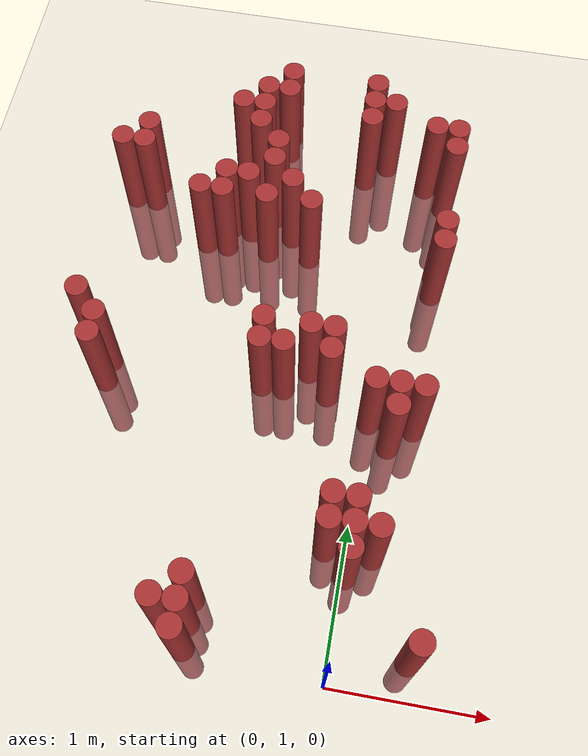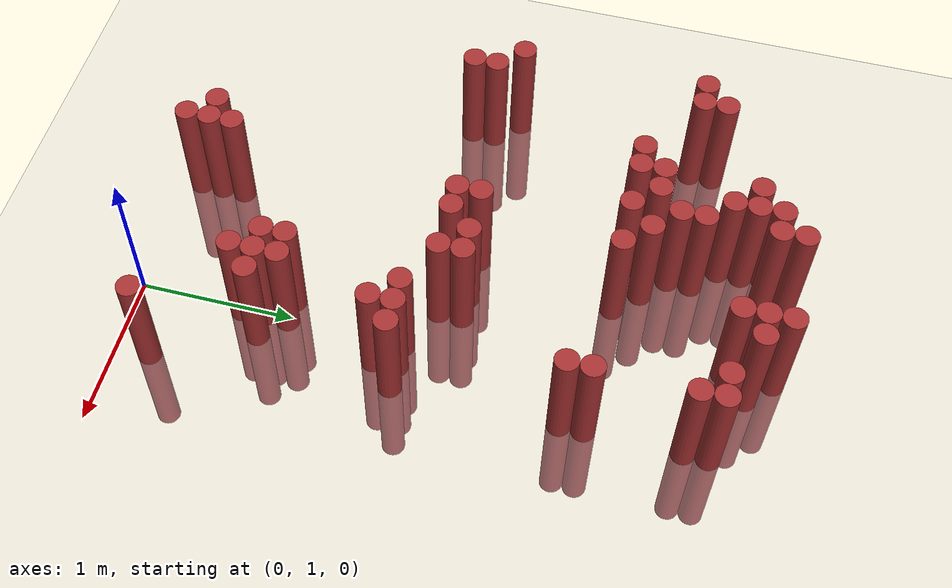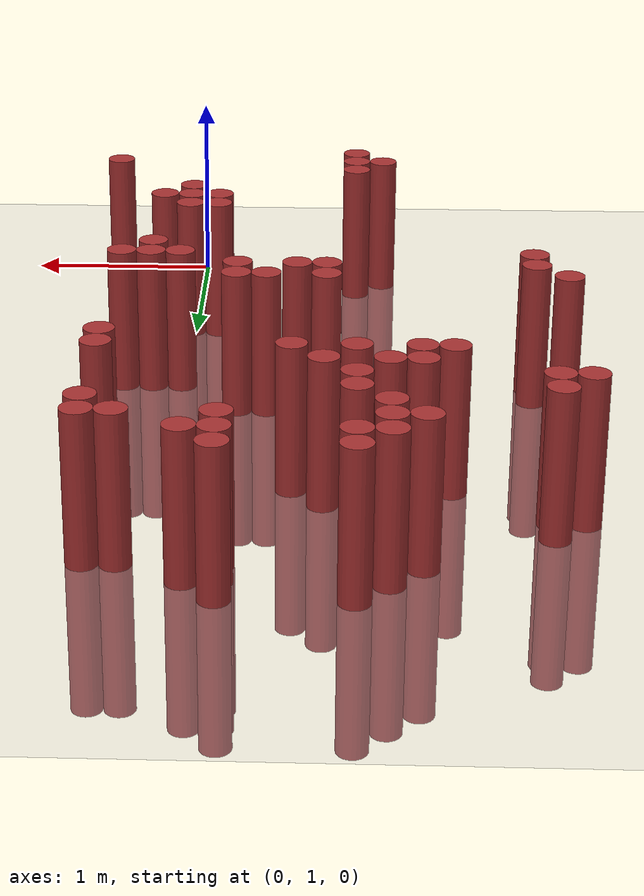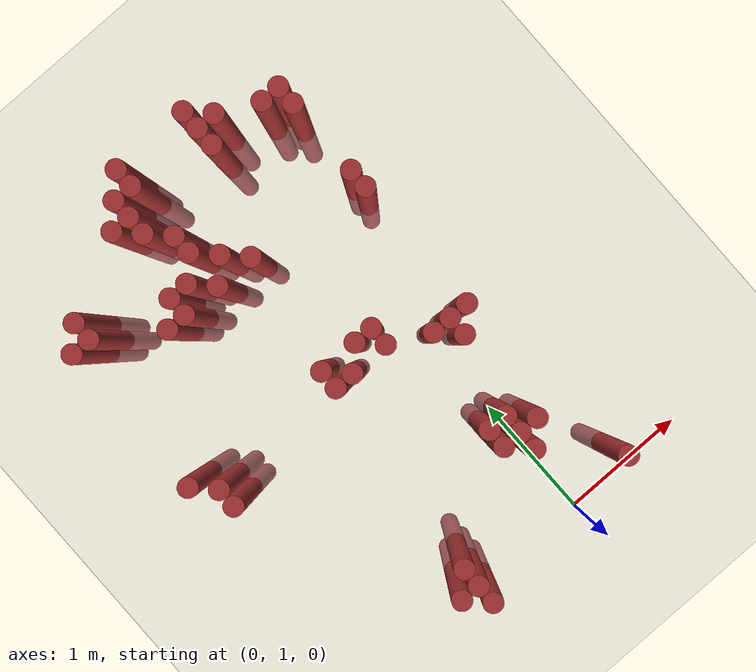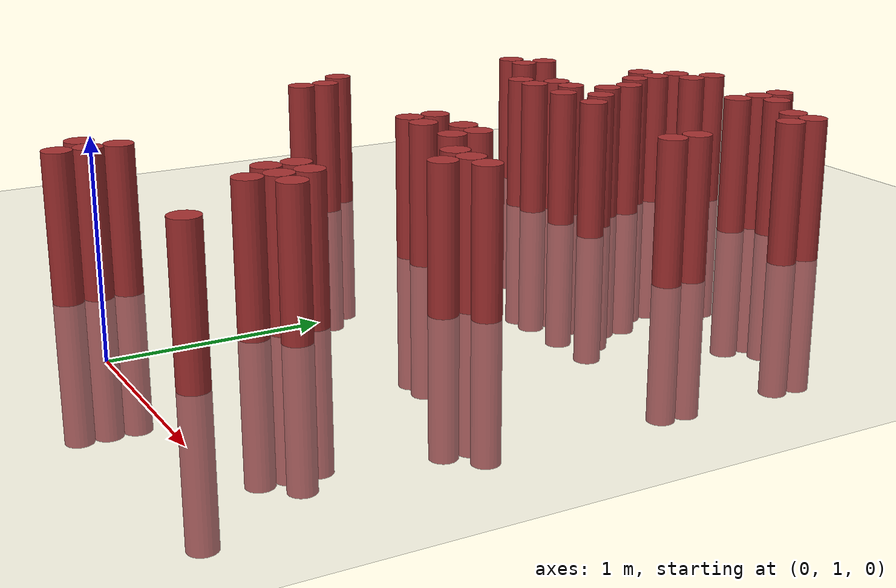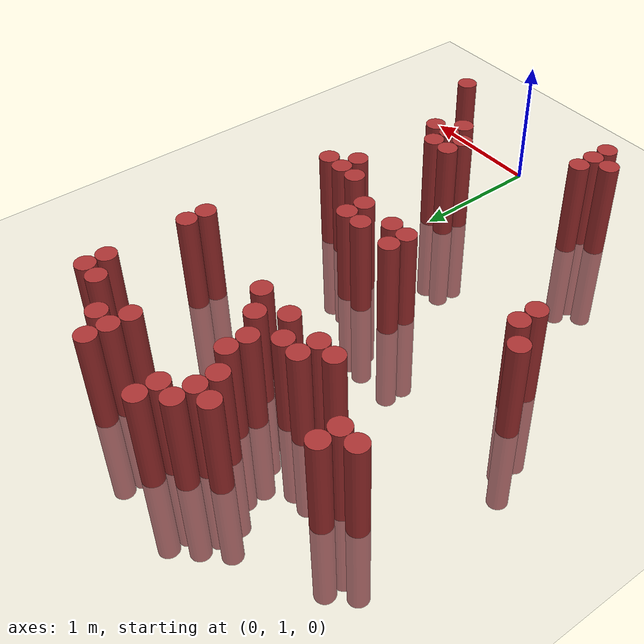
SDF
<sdf version="1.6">
 <world name="default">
  <model name="ground_plane">
   <static>1</static>
   <link name="link">
    <collision name="collision">
     <geometry><plane><normal>0 0 1</normal><size>100 100</size></plane></geometry>
     <surface><friction><ode><mu>100</mu><mu2>50</mu2></ode></friction></surface>
    </collision>
    <visual name="visual">
     <cast_shadows>0</cast_shadows>
     <geometry><plane><normal>0 0 1</normal><size>100 100</size></plane></geometry>
     <material>
      <script><uri>file://media/materials/scripts/gazebo.material</uri><name>Gazebo/Grey</name></script>
     </material>
    </visual>
   </link>
  </model>
  <model name="unit_cylinder_318">
   <static>1</static>
   <pose>-1.925000 3.025000 0.000000 0.000000 0.000000 0.000000</pose>
   <link name="link">
    <inertial>
     <mass>1</mass>
     <inertia><ixx>0.145833</ixx><ixy>0</ixy><ixz>0</ixz><iyy>0.145833</iyy><iyz>0</iyz><izz>0.125</izz></inertia>
    </inertial>
    <collision name="collision">
     <geometry><cylinder><radius>0.075000</radius><length>1.5</length></cylinder></geometry>
    </collision>
    <visual name="visual">
     <geometry><cylinder><radius>0.075000</radius><length>1.5</length></cylinder></geometry>
     <material>
      <ambient>0.648000 0.192000 0.192000 1</ambient>
      <diffuse>0.648000 0.192000 0.192000 1</diffuse>
     </material>
     <material>
      <script><name>Gazebo/Grey</name><uri>file://media/materials/scripts/gazebo.material</uri></script>
     </material>
    </visual>
   </link>
  </model>
  <model name="unit_cylinder_319">
   <static>1</static>
   <pose>-1.925000 4.225000 0.000000 0.000000 0.000000 0.000000</pose>
   <link name="link">
    <inertial>
     <mass>1</mass>
     <inertia><ixx>0.145833</ixx><ixy>0</ixy><ixz>0</ixz><iyy>0.145833</iyy><iyz>0</iyz><izz>0.125</izz></inertia>
    </inertial>
    <collision name="collision">
     <geometry><cylinder><radius>0.075000</radius><length>1.5</length></cylinder></geometry>
    </collision>
    <visual name="visual">
     <geometry><cylinder><radius>0.075000</radius><length>1.5</length></cylinder></geometry>
     <material>
      <ambient>0.648000 0.192000 0.192000 1</ambient>
      <diffuse>0.648000 0.192000 0.192000 1</diffuse>
     </material>
     <material>
      <script><name>Gazebo/Grey</name><uri>file://media/materials/scripts/gazebo.material</uri></script>
     </material>
    </visual>
   </link>
  </model>
  <model name="unit_cylinder_322">
   <static>1</static>
   <pose>-1.775000 2.725000 0.000000 0.000000 0.000000 0.000000</pose>
   <link name="link">
    <inertial>
     <mass>1</mass>
     <inertia><ixx>0.145833</ixx><ixy>0</ixy><ixz>0</ixz><iyy>0.145833</iyy><iyz>0</iyz><izz>0.125</izz></inertia>
    </inertial>
    <collision name="collision">
     <geometry><cylinder><radius>0.075000</radius><length>1.5</length></cylinder></geometry>
    </collision>
    <visual name="visual">
     <geometry><cylinder><radius>0.075000</radius><length>1.5</length></cylinder></geometry>
     <material>
      <ambient>0.648000 0.192000 0.192000 1</ambient>
      <diffuse>0.648000 0.192000 0.192000 1</diffuse>
     </material>
     <material>
      <script><name>Gazebo/Grey</name><uri>file://media/materials/scripts/gazebo.material</uri></script>
     </material>
    </visual>
   </link>
  </model>
  <model name="unit_cylinder_323">
   <static>1</static>
   <pose>-1.775000 2.875000 0.000000 0.000000 0.000000 0.000000</pose>
   <link name="link">
    <inertial>
     <mass>1</mass>
     <inertia><ixx>0.145833</ixx><ixy>0</ixy><ixz>0</ixz><iyy>0.145833</iyy><iyz>0</iyz><izz>0.125</izz></inertia>
    </inertial>
    <collision name="collision">
     <geometry><cylinder><radius>0.075000</radius><length>1.5</length></cylinder></geometry>
    </collision>
    <visual name="visual">
     <geometry><cylinder><radius>0.075000</radius><length>1.5</length></cylinder></geometry>
     <material>
      <ambient>0.648000 0.192000 0.192000 1</ambient>
      <diffuse>0.648000 0.192000 0.192000 1</diffuse>
     </material>
     <material>
      <script><name>Gazebo/Grey</name><uri>file://media/materials/scripts/gazebo.material</uri></script>
     </material>
    </visual>
   </link>
  </model>
  <model name="unit_cylinder_324">
   <static>1</static>
   <pose>-1.775000 4.225000 0.000000 0.000000 0.000000 0.000000</pose>
   <link name="link">
    <inertial>
     <mass>1</mass>
     <inertia><ixx>0.145833</ixx><ixy>0</ixy><ixz>0</ixz><iyy>0.145833</iyy><iyz>0</iyz><izz>0.125</izz></inertia>
    </inertial>
    <collision name="collision">
     <geometry><cylinder><radius>0.075000</radius><length>1.5</length></cylinder></geometry>
    </collision>
    <visual name="visual">
     <geometry><cylinder><radius>0.075000</radius><length>1.5</length></cylinder></geometry>
     <material>
      <ambient>0.648000 0.192000 0.192000 1</ambient>
      <diffuse>0.648000 0.192000 0.192000 1</diffuse>
     </material>
     <material>
      <script><name>Gazebo/Grey</name><uri>file://media/materials/scripts/gazebo.material</uri></script>
     </material>
    </visual>
   </link>
  </model>
  <model name="unit_cylinder_325">
   <static>1</static>
   <pose>-1.775000 4.375000 0.000000 0.000000 0.000000 0.000000</pose>
   <link name="link">
    <inertial>
     <mass>1</mass>
     <inertia><ixx>0.145833</ixx><ixy>0</ixy><ixz>0</ixz><iyy>0.145833</iyy><iyz>0</iyz><izz>0.125</izz></inertia>
    </inertial>
    <collision name="collision">
     <geometry><cylinder><radius>0.075000</radius><length>1.5</length></cylinder></geometry>
    </collision>
    <visual name="visual">
     <geometry><cylinder><radius>0.075000</radius><length>1.5</length></cylinder></geometry>
     <material>
      <ambient>0.648000 0.192000 0.192000 1</ambient>
      <diffuse>0.648000 0.192000 0.192000 1</diffuse>
     </material>
     <material>
      <script><name>Gazebo/Grey</name><uri>file://media/materials/scripts/gazebo.material</uri></script>
     </material>
    </visual>
   </link>
  </model>
  <model name="unit_cylinder_328">
   <static>1</static>
   <pose>-1.325000 3.925000 0.000000 0.000000 0.000000 0.000000</pose>
   <link name="link">
    <inertial>
     <mass>1</mass>
     <inertia><ixx>0.145833</ixx><ixy>0</ixy><ixz>0</ixz><iyy>0.145833</iyy><iyz>0</iyz><izz>0.125</izz></inertia>
    </inertial>
    <collision name="collision">
     <geometry><cylinder><radius>0.075000</radius><length>1.5</length></cylinder></geometry>
    </collision>
    <visual name="visual">
     <geometry><cylinder><radius>0.075000</radius><length>1.5</length></cylinder></geometry>
     <material>
      <ambient>0.648000 0.192000 0.192000 1</ambient>
      <diffuse>0.648000 0.192000 0.192000 1</diffuse>
     </material>
     <material>
      <script><name>Gazebo/Grey</name><uri>file://media/materials/scripts/gazebo.material</uri></script>
     </material>
    </visual>
   </link>
  </model>
  <model name="unit_cylinder_331">
   <static>1</static>
   <pose>-1.175000 3.925000 0.000000 0.000000 0.000000 0.000000</pose>
   <link name="link">
    <inertial>
     <mass>1</mass>
     <inertia><ixx>0.145833</ixx><ixy>0</ixy><ixz>0</ixz><iyy>0.145833</iyy><iyz>0</iyz><izz>0.125</izz></inertia>
    </inertial>
    <collision name="collision">
     <geometry><cylinder><radius>0.075000</radius><length>1.5</length></cylinder></geometry>
    </collision>
    <visual name="visual">
     <geometry><cylinder><radius>0.075000</radius><length>1.5</length></cylinder></geometry>
     <material>
      <ambient>0.648000 0.192000 0.192000 1</ambient>
      <diffuse>0.648000 0.192000 0.192000 1</diffuse>
     </material>
     <material>
      <script><name>Gazebo/Grey</name><uri>file://media/materials/scripts/gazebo.material</uri></script>
     </material>
    </visual>
   </link>
  </model>
  <model name="unit_cylinder_332">
   <static>1</static>
   <pose>-1.175000 4.075000 0.000000 0.000000 0.000000 0.000000</pose>
   <link name="link">
    <inertial>
     <mass>1</mass>
     <inertia><ixx>0.145833</ixx><ixy>0</ixy><ixz>0</ixz><iyy>0.145833</iyy><iyz>0</iyz><izz>0.125</izz></inertia>
    </inertial>
    <collision name="collision">
     <geometry><cylinder><radius>0.075000</radius><length>1.5</length></cylinder></geometry>
    </collision>
    <visual name="visual">
     <geometry><cylinder><radius>0.075000</radius><length>1.5</length></cylinder></geometry>
     <material>
      <ambient>0.648000 0.192000 0.192000 1</ambient>
      <diffuse>0.648000 0.192000 0.192000 1</diffuse>
     </material>
     <material>
      <script><name>Gazebo/Grey</name><uri>file://media/materials/scripts/gazebo.material</uri></script>
     </material>
    </visual>
   </link>
  </model>
  <model name="unit_cylinder_333">
   <static>1</static>
   <pose>-1.175000 4.675000 0.000000 0.000000 0.000000 0.000000</pose>
   <link name="link">
    <inertial>
     <mass>1</mass>
     <inertia><ixx>0.145833</ixx><ixy>0</ixy><ixz>0</ixz><iyy>0.145833</iyy><iyz>0</iyz><izz>0.125</izz></inertia>
    </inertial>
    <collision name="collision">
     <geometry><cylinder><radius>0.075000</radius><length>1.5</length></cylinder></geometry>
    </collision>
    <visual name="visual">
     <geometry><cylinder><radius>0.075000</radius><length>1.5</length></cylinder></geometry>
     <material>
      <ambient>0.648000 0.192000 0.192000 1</ambient>
      <diffuse>0.648000 0.192000 0.192000 1</diffuse>
     </material>
     <material>
      <script><name>Gazebo/Grey</name><uri>file://media/materials/scripts/gazebo.material</uri></script>
     </material>
    </visual>
   </link>
  </model>
  <model name="unit_cylinder_334">
   <static>1</static>
   <pose>-1.025000 1.225000 0.000000 0.000000 0.000000 0.000000</pose>
   <link name="link">
    <inertial>
     <mass>1</mass>
     <inertia><ixx>0.145833</ixx><ixy>0</ixy><ixz>0</ixz><iyy>0.145833</iyy><iyz>0</iyz><izz>0.125</izz></inertia>
    </inertial>
    <collision name="collision">
     <geometry><cylinder><radius>0.075000</radius><length>1.5</length></cylinder></geometry>
    </collision>
    <visual name="visual">
     <geometry><cylinder><radius>0.075000</radius><length>1.5</length></cylinder></geometry>
     <material>
      <ambient>0.648000 0.192000 0.192000 1</ambient>
      <diffuse>0.648000 0.192000 0.192000 1</diffuse>
     </material>
     <material>
      <script><name>Gazebo/Grey</name><uri>file://media/materials/scripts/gazebo.material</uri></script>
     </material>
    </visual>
   </link>
  </model>
  <model name="unit_cylinder_335">
   <static>1</static>
   <pose>-1.025000 4.075000 0.000000 0.000000 0.000000 0.000000</pose>
   <link name="link">
    <inertial>
     <mass>1</mass>
     <inertia><ixx>0.145833</ixx><ixy>0</ixy><ixz>0</ixz><iyy>0.145833</iyy><iyz>0</iyz><izz>0.125</izz></inertia>
    </inertial>
    <collision name="collision">
     <geometry><cylinder><radius>0.075000</radius><length>1.5</length></cylinder></geometry>
    </collision>
    <visual name="visual">
     <geometry><cylinder><radius>0.075000</radius><length>1.5</length></cylinder></geometry>
     <material>
      <ambient>0.648000 0.192000 0.192000 1</ambient>
      <diffuse>0.648000 0.192000 0.192000 1</diffuse>
     </material>
     <material>
      <script><name>Gazebo/Grey</name><uri>file://media/materials/scripts/gazebo.material</uri></script>
     </material>
    </visual>
   </link>
  </model>
  <model name="unit_cylinder_336">
   <static>1</static>
   <pose>-1.025000 4.525000 0.000000 0.000000 0.000000 0.000000</pose>
   <link name="link">
    <inertial>
     <mass>1</mass>
     <inertia><ixx>0.145833</ixx><ixy>0</ixy><ixz>0</ixz><iyy>0.145833</iyy><iyz>0</iyz><izz>0.125</izz></inertia>
    </inertial>
    <collision name="collision">
     <geometry><cylinder><radius>0.075000</radius><length>1.5</length></cylinder></geometry>
    </collision>
    <visual name="visual">
     <geometry><cylinder><radius>0.075000</radius><length>1.5</length></cylinder></geometry>
     <material>
      <ambient>0.648000 0.192000 0.192000 1</ambient>
      <diffuse>0.648000 0.192000 0.192000 1</diffuse>
     </material>
     <material>
      <script><name>Gazebo/Grey</name><uri>file://media/materials/scripts/gazebo.material</uri></script>
     </material>
    </visual>
   </link>
  </model>
  <model name="unit_cylinder_337">
   <static>1</static>
   <pose>-1.025000 4.675000 0.000000 0.000000 0.000000 0.000000</pose>
   <link name="link">
    <inertial>
     <mass>1</mass>
     <inertia><ixx>0.145833</ixx><ixy>0</ixy><ixz>0</ixz><iyy>0.145833</iyy><iyz>0</iyz><izz>0.125</izz></inertia>
    </inertial>
    <collision name="collision">
     <geometry><cylinder><radius>0.075000</radius><length>1.5</length></cylinder></geometry>
    </collision>
    <visual name="visual">
     <geometry><cylinder><radius>0.075000</radius><length>1.5</length></cylinder></geometry>
     <material>
      <ambient>0.648000 0.192000 0.192000 1</ambient>
      <diffuse>0.648000 0.192000 0.192000 1</diffuse>
     </material>
     <material>
      <script><name>Gazebo/Grey</name><uri>file://media/materials/scripts/gazebo.material</uri></script>
     </material>
    </visual>
   </link>
  </model>
  <model name="unit_cylinder_338">
   <static>1</static>
   <pose>-1.025000 4.825000 0.000000 0.000000 0.000000 0.000000</pose>
   <link name="link">
    <inertial>
     <mass>1</mass>
     <inertia><ixx>0.145833</ixx><ixy>0</ixy><ixz>0</ixz><iyy>0.145833</iyy><iyz>0</iyz><izz>0.125</izz></inertia>
    </inertial>
    <collision name="collision">
     <geometry><cylinder><radius>0.075000</radius><length>1.5</length></cylinder></geometry>
    </collision>
    <visual name="visual">
     <geometry><cylinder><radius>0.075000</radius><length>1.5</length></cylinder></geometry>
     <material>
      <ambient>0.648000 0.192000 0.192000 1</ambient>
      <diffuse>0.648000 0.192000 0.192000 1</diffuse>
     </material>
     <material>
      <script><name>Gazebo/Grey</name><uri>file://media/materials/scripts/gazebo.material</uri></script>
     </material>
    </visual>
   </link>
  </model>
  <model name="unit_cylinder_339">
   <static>1</static>
   <pose>-0.875000 1.075000 0.000000 0.000000 0.000000 0.000000</pose>
   <link name="link">
    <inertial>
     <mass>1</mass>
     <inertia><ixx>0.145833</ixx><ixy>0</ixy><ixz>0</ixz><iyy>0.145833</iyy><iyz>0</iyz><izz>0.125</izz></inertia>
    </inertial>
    <collision name="collision">
     <geometry><cylinder><radius>0.075000</radius><length>1.5</length></cylinder></geometry>
    </collision>
    <visual name="visual">
     <geometry><cylinder><radius>0.075000</radius><length>1.5</length></cylinder></geometry>
     <material>
      <ambient>0.648000 0.192000 0.192000 1</ambient>
      <diffuse>0.648000 0.192000 0.192000 1</diffuse>
     </material>
     <material>
      <script><name>Gazebo/Grey</name><uri>file://media/materials/scripts/gazebo.material</uri></script>
     </material>
    </visual>
   </link>
  </model>
  <model name="unit_cylinder_340">
   <static>1</static>
   <pose>-0.875000 1.225000 0.000000 0.000000 0.000000 0.000000</pose>
   <link name="link">
    <inertial>
     <mass>1</mass>
     <inertia><ixx>0.145833</ixx><ixy>0</ixy><ixz>0</ixz><iyy>0.145833</iyy><iyz>0</iyz><izz>0.125</izz></inertia>
    </inertial>
    <collision name="collision">
     <geometry><cylinder><radius>0.075000</radius><length>1.5</length></cylinder></geometry>
    </collision>
    <visual name="visual">
     <geometry><cylinder><radius>0.075000</radius><length>1.5</length></cylinder></geometry>
     <material>
      <ambient>0.648000 0.192000 0.192000 1</ambient>
      <diffuse>0.648000 0.192000 0.192000 1</diffuse>
     </material>
     <material>
      <script><name>Gazebo/Grey</name><uri>file://media/materials/scripts/gazebo.material</uri></script>
     </material>
    </visual>
   </link>
  </model>
  <model name="unit_cylinder_341">
   <static>1</static>
   <pose>-0.875000 1.375000 0.000000 0.000000 0.000000 0.000000</pose>
   <link name="link">
    <inertial>
     <mass>1</mass>
     <inertia><ixx>0.145833</ixx><ixy>0</ixy><ixz>0</ixz><iyy>0.145833</iyy><iyz>0</iyz><izz>0.125</izz></inertia>
    </inertial>
    <collision name="collision">
     <geometry><cylinder><radius>0.075000</radius><length>1.5</length></cylinder></geometry>
    </collision>
    <visual name="visual">
     <geometry><cylinder><radius>0.075000</radius><length>1.5</length></cylinder></geometry>
     <material>
      <ambient>0.648000 0.192000 0.192000 1</ambient>
      <diffuse>0.648000 0.192000 0.192000 1</diffuse>
     </material>
     <material>
      <script><name>Gazebo/Grey</name><uri>file://media/materials/scripts/gazebo.material</uri></script>
     </material>
    </visual>
   </link>
  </model>
  <model name="unit_cylinder_342">
   <static>1</static>
   <pose>-0.875000 3.925000 0.000000 0.000000 0.000000 0.000000</pose>
   <link name="link">
    <inertial>
     <mass>1</mass>
     <inertia><ixx>0.145833</ixx><ixy>0</ixy><ixz>0</ixz><iyy>0.145833</iyy><iyz>0</iyz><izz>0.125</izz></inertia>
    </inertial>
    <collision name="collision">
     <geometry><cylinder><radius>0.075000</radius><length>1.5</length></cylinder></geometry>
    </collision>
    <visual name="visual">
     <geometry><cylinder><radius>0.075000</radius><length>1.5</length></cylinder></geometry>
     <material>
      <ambient>0.648000 0.192000 0.192000 1</ambient>
      <diffuse>0.648000 0.192000 0.192000 1</diffuse>
     </material>
     <material>
      <script><name>Gazebo/Grey</name><uri>file://media/materials/scripts/gazebo.material</uri></script>
     </material>
    </visual>
   </link>
  </model>
  <model name="unit_cylinder_343">
   <static>1</static>
   <pose>-0.875000 4.225000 0.000000 0.000000 0.000000 0.000000</pose>
   <link name="link">
    <inertial>
     <mass>1</mass>
     <inertia><ixx>0.145833</ixx><ixy>0</ixy><ixz>0</ixz><iyy>0.145833</iyy><iyz>0</iyz><izz>0.125</izz></inertia>
    </inertial>
    <collision name="collision">
     <geometry><cylinder><radius>0.075000</radius><length>1.5</length></cylinder></geometry>
    </collision>
    <visual name="visual">
     <geometry><cylinder><radius>0.075000</radius><length>1.5</length></cylinder></geometry>
     <material>
      <ambient>0.648000 0.192000 0.192000 1</ambient>
      <diffuse>0.648000 0.192000 0.192000 1</diffuse>
     </material>
     <material>
      <script><name>Gazebo/Grey</name><uri>file://media/materials/scripts/gazebo.material</uri></script>
     </material>
    </visual>
   </link>
  </model>
  <model name="unit_cylinder_344">
   <static>1</static>
   <pose>-0.875000 4.375000 0.000000 0.000000 0.000000 0.000000</pose>
   <link name="link">
    <inertial>
     <mass>1</mass>
     <inertia><ixx>0.145833</ixx><ixy>0</ixy><ixz>0</ixz><iyy>0.145833</iyy><iyz>0</iyz><izz>0.125</izz></inertia>
    </inertial>
    <collision name="collision">
     <geometry><cylinder><radius>0.075000</radius><length>1.5</length></cylinder></geometry>
    </collision>
    <visual name="visual">
     <geometry><cylinder><radius>0.075000</radius><length>1.5</length></cylinder></geometry>
     <material>
      <ambient>0.648000 0.192000 0.192000 1</ambient>
      <diffuse>0.648000 0.192000 0.192000 1</diffuse>
     </material>
     <material>
      <script><name>Gazebo/Grey</name><uri>file://media/materials/scripts/gazebo.material</uri></script>
     </material>
    </visual>
   </link>
  </model>
  <model name="unit_cylinder_345">
   <static>1</static>
   <pose>-0.875000 4.825000 0.000000 0.000000 0.000000 0.000000</pose>
   <link name="link">
    <inertial>
     <mass>1</mass>
     <inertia><ixx>0.145833</ixx><ixy>0</ixy><ixz>0</ixz><iyy>0.145833</iyy><iyz>0</iyz><izz>0.125</izz></inertia>
    </inertial>
    <collision name="collision">
     <geometry><cylinder><radius>0.075000</radius><length>1.5</length></cylinder></geometry>
    </collision>
    <visual name="visual">
     <geometry><cylinder><radius>0.075000</radius><length>1.5</length></cylinder></geometry>
     <material>
      <ambient>0.648000 0.192000 0.192000 1</ambient>
      <diffuse>0.648000 0.192000 0.192000 1</diffuse>
     </material>
     <material>
      <script><name>Gazebo/Grey</name><uri>file://media/materials/scripts/gazebo.material</uri></script>
     </material>
    </visual>
   </link>
  </model>
  <model name="unit_cylinder_346">
   <static>1</static>
   <pose>-0.875000 4.975000 0.000000 0.000000 0.000000 0.000000</pose>
   <link name="link">
    <inertial>
     <mass>1</mass>
     <inertia><ixx>0.145833</ixx><ixy>0</ixy><ixz>0</ixz><iyy>0.145833</iyy><iyz>0</iyz><izz>0.125</izz></inertia>
    </inertial>
    <collision name="collision">
     <geometry><cylinder><radius>0.075000</radius><length>1.5</length></cylinder></geometry>
    </collision>
    <visual name="visual">
     <geometry><cylinder><radius>0.075000</radius><length>1.5</length></cylinder></geometry>
     <material>
      <ambient>0.648000 0.192000 0.192000 1</ambient>
      <diffuse>0.648000 0.192000 0.192000 1</diffuse>
     </material>
     <material>
      <script><name>Gazebo/Grey</name><uri>file://media/materials/scripts/gazebo.material</uri></script>
     </material>
    </visual>
   </link>
  </model>
  <model name="unit_cylinder_347">
   <static>1</static>
   <pose>-0.725000 2.875000 0.000000 0.000000 0.000000 0.000000</pose>
   <link name="link">
    <inertial>
     <mass>1</mass>
     <inertia><ixx>0.145833</ixx><ixy>0</ixy><ixz>0</ixz><iyy>0.145833</iyy><iyz>0</iyz><izz>0.125</izz></inertia>
    </inertial>
    <collision name="collision">
     <geometry><cylinder><radius>0.075000</radius><length>1.5</length></cylinder></geometry>
    </collision>
    <visual name="visual">
     <geometry><cylinder><radius>0.075000</radius><length>1.5</length></cylinder></geometry>
     <material>
      <ambient>0.648000 0.192000 0.192000 1</ambient>
      <diffuse>0.648000 0.192000 0.192000 1</diffuse>
     </material>
     <material>
      <script><name>Gazebo/Grey</name><uri>file://media/materials/scripts/gazebo.material</uri></script>
     </material>
    </visual>
   </link>
  </model>
  <model name="unit_cylinder_348">
   <static>1</static>
   <pose>-0.725000 3.025000 0.000000 0.000000 0.000000 0.000000</pose>
   <link name="link">
    <inertial>
     <mass>1</mass>
     <inertia><ixx>0.145833</ixx><ixy>0</ixy><ixz>0</ixz><iyy>0.145833</iyy><iyz>0</iyz><izz>0.125</izz></inertia>
    </inertial>
    <collision name="collision">
     <geometry><cylinder><radius>0.075000</radius><length>1.5</length></cylinder></geometry>
    </collision>
    <visual name="visual">
     <geometry><cylinder><radius>0.075000</radius><length>1.5</length></cylinder></geometry>
     <material>
      <ambient>0.648000 0.192000 0.192000 1</ambient>
      <diffuse>0.648000 0.192000 0.192000 1</diffuse>
     </material>
     <material>
      <script><name>Gazebo/Grey</name><uri>file://media/materials/scripts/gazebo.material</uri></script>
     </material>
    </visual>
   </link>
  </model>
  <model name="unit_cylinder_349">
   <static>1</static>
   <pose>-0.725000 4.075000 0.000000 0.000000 0.000000 0.000000</pose>
   <link name="link">
    <inertial>
     <mass>1</mass>
     <inertia><ixx>0.145833</ixx><ixy>0</ixy><ixz>0</ixz><iyy>0.145833</iyy><iyz>0</iyz><izz>0.125</izz></inertia>
    </inertial>
    <collision name="collision">
     <geometry><cylinder><radius>0.075000</radius><length>1.5</length></cylinder></geometry>
    </collision>
    <visual name="visual">
     <geometry><cylinder><radius>0.075000</radius><length>1.5</length></cylinder></geometry>
     <material>
      <ambient>0.648000 0.192000 0.192000 1</ambient>
      <diffuse>0.648000 0.192000 0.192000 1</diffuse>
     </material>
     <material>
      <script><name>Gazebo/Grey</name><uri>file://media/materials/scripts/gazebo.material</uri></script>
     </material>
    </visual>
   </link>
  </model>
  <model name="unit_cylinder_350">
   <static>1</static>
   <pose>-0.575000 2.875000 0.000000 0.000000 0.000000 0.000000</pose>
   <link name="link">
    <inertial>
     <mass>1</mass>
     <inertia><ixx>0.145833</ixx><ixy>0</ixy><ixz>0</ixz><iyy>0.145833</iyy><iyz>0</iyz><izz>0.125</izz></inertia>
    </inertial>
    <collision name="collision">
     <geometry><cylinder><radius>0.075000</radius><length>1.5</length></cylinder></geometry>
    </collision>
    <visual name="visual">
     <geometry><cylinder><radius>0.075000</radius><length>1.5</length></cylinder></geometry>
     <material>
      <ambient>0.648000 0.192000 0.192000 1</ambient>
      <diffuse>0.648000 0.192000 0.192000 1</diffuse>
     </material>
     <material>
      <script><name>Gazebo/Grey</name><uri>file://media/materials/scripts/gazebo.material</uri></script>
     </material>
    </visual>
   </link>
  </model>
  <model name="unit_cylinder_351">
   <static>1</static>
   <pose>-0.575000 3.925000 0.000000 0.000000 0.000000 0.000000</pose>
   <link name="link">
    <inertial>
     <mass>1</mass>
     <inertia><ixx>0.145833</ixx><ixy>0</ixy><ixz>0</ixz><iyy>0.145833</iyy><iyz>0</iyz><izz>0.125</izz></inertia>
    </inertial>
    <collision name="collision">
     <geometry><cylinder><radius>0.075000</radius><length>1.5</length></cylinder></geometry>
    </collision>
    <visual name="visual">
     <geometry><cylinder><radius>0.075000</radius><length>1.5</length></cylinder></geometry>
     <material>
      <ambient>0.648000 0.192000 0.192000 1</ambient>
      <diffuse>0.648000 0.192000 0.192000 1</diffuse>
     </material>
     <material>
      <script><name>Gazebo/Grey</name><uri>file://media/materials/scripts/gazebo.material</uri></script>
     </material>
    </visual>
   </link>
  </model>
  <model name="unit_cylinder_352">
   <static>1</static>
   <pose>-0.425000 3.025000 0.000000 0.000000 0.000000 0.000000</pose>
   <link name="link">
    <inertial>
     <mass>1</mass>
     <inertia><ixx>0.145833</ixx><ixy>0</ixy><ixz>0</ixz><iyy>0.145833</iyy><iyz>0</iyz><izz>0.125</izz></inertia>
    </inertial>
    <collision name="collision">
     <geometry><cylinder><radius>0.075000</radius><length>1.5</length></cylinder></geometry>
    </collision>
    <visual name="visual">
     <geometry><cylinder><radius>0.075000</radius><length>1.5</length></cylinder></geometry>
     <material>
      <ambient>0.648000 0.192000 0.192000 1</ambient>
      <diffuse>0.648000 0.192000 0.192000 1</diffuse>
     </material>
     <material>
      <script><name>Gazebo/Grey</name><uri>file://media/materials/scripts/gazebo.material</uri></script>
     </material>
    </visual>
   </link>
  </model>
  <model name="unit_cylinder_353">
   <static>1</static>
   <pose>-0.275000 2.875000 0.000000 0.000000 0.000000 0.000000</pose>
   <link name="link">
    <inertial>
     <mass>1</mass>
     <inertia><ixx>0.145833</ixx><ixy>0</ixy><ixz>0</ixz><iyy>0.145833</iyy><iyz>0</iyz><izz>0.125</izz></inertia>
    </inertial>
    <collision name="collision">
     <geometry><cylinder><radius>0.075000</radius><length>1.5</length></cylinder></geometry>
    </collision>
    <visual name="visual">
     <geometry><cylinder><radius>0.075000</radius><length>1.5</length></cylinder></geometry>
     <material>
      <ambient>0.648000 0.192000 0.192000 1</ambient>
      <diffuse>0.648000 0.192000 0.192000 1</diffuse>
     </material>
     <material>
      <script><name>Gazebo/Grey</name><uri>file://media/materials/scripts/gazebo.material</uri></script>
     </material>
    </visual>
   </link>
  </model>
  <model name="unit_cylinder_354">
   <static>1</static>
   <pose>-0.275000 3.025000 0.000000 0.000000 0.000000 0.000000</pose>
   <link name="link">
    <inertial>
     <mass>1</mass>
     <inertia><ixx>0.145833</ixx><ixy>0</ixy><ixz>0</ixz><iyy>0.145833</iyy><iyz>0</iyz><izz>0.125</izz></inertia>
    </inertial>
    <collision name="collision">
     <geometry><cylinder><radius>0.075000</radius><length>1.5</length></cylinder></geometry>
    </collision>
    <visual name="visual">
     <geometry><cylinder><radius>0.075000</radius><length>1.5</length></cylinder></geometry>
     <material>
      <ambient>0.648000 0.192000 0.192000 1</ambient>
      <diffuse>0.648000 0.192000 0.192000 1</diffuse>
     </material>
     <material>
      <script><name>Gazebo/Grey</name><uri>file://media/materials/scripts/gazebo.material</uri></script>
     </material>
    </visual>
   </link>
  </model>
  <model name="unit_cylinder_355">
   <static>1</static>
   <pose>-0.275000 4.675000 0.000000 0.000000 0.000000 0.000000</pose>
   <link name="link">
    <inertial>
     <mass>1</mass>
     <inertia><ixx>0.145833</ixx><ixy>0</ixy><ixz>0</ixz><iyy>0.145833</iyy><iyz>0</iyz><izz>0.125</izz></inertia>
    </inertial>
    <collision name="collision">
     <geometry><cylinder><radius>0.075000</radius><length>1.5</length></cylinder></geometry>
    </collision>
    <visual name="visual">
     <geometry><cylinder><radius>0.075000</radius><length>1.5</length></cylinder></geometry>
     <material>
      <ambient>0.648000 0.192000 0.192000 1</ambient>
      <diffuse>0.648000 0.192000 0.192000 1</diffuse>
     </material>
     <material>
      <script><name>Gazebo/Grey</name><uri>file://media/materials/scripts/gazebo.material</uri></script>
     </material>
    </visual>
   </link>
  </model>
  <model name="unit_cylinder_356">
   <static>1</static>
   <pose>-0.275000 4.825000 0.000000 0.000000 0.000000 0.000000</pose>
   <link name="link">
    <inertial>
     <mass>1</mass>
     <inertia><ixx>0.145833</ixx><ixy>0</ixy><ixz>0</ixz><iyy>0.145833</iyy><iyz>0</iyz><izz>0.125</izz></inertia>
    </inertial>
    <collision name="collision">
     <geometry><cylinder><radius>0.075000</radius><length>1.5</length></cylinder></geometry>
    </collision>
    <visual name="visual">
     <geometry><cylinder><radius>0.075000</radius><length>1.5</length></cylinder></geometry>
     <material>
      <ambient>0.648000 0.192000 0.192000 1</ambient>
      <diffuse>0.648000 0.192000 0.192000 1</diffuse>
     </material>
     <material>
      <script><name>Gazebo/Grey</name><uri>file://media/materials/scripts/gazebo.material</uri></script>
     </material>
    </visual>
   </link>
  </model>
  <model name="unit_cylinder_357">
   <static>1</static>
   <pose>-0.275000 4.975000 0.000000 0.000000 0.000000 0.000000</pose>
   <link name="link">
    <inertial>
     <mass>1</mass>
     <inertia><ixx>0.145833</ixx><ixy>0</ixy><ixz>0</ixz><iyy>0.145833</iyy><iyz>0</iyz><izz>0.125</izz></inertia>
    </inertial>
    <collision name="collision">
     <geometry><cylinder><radius>0.075000</radius><length>1.5</length></cylinder></geometry>
    </collision>
    <visual name="visual">
     <geometry><cylinder><radius>0.075000</radius><length>1.5</length></cylinder></geometry>
     <material>
      <ambient>0.648000 0.192000 0.192000 1</ambient>
      <diffuse>0.648000 0.192000 0.192000 1</diffuse>
     </material>
     <material>
      <script><name>Gazebo/Grey</name><uri>file://media/materials/scripts/gazebo.material</uri></script>
     </material>
    </visual>
   </link>
  </model>
  <model name="unit_cylinder_358">
   <static>1</static>
   <pose>-0.125000 1.825000 0.000000 0.000000 0.000000 0.000000</pose>
   <link name="link">
    <inertial>
     <mass>1</mass>
     <inertia><ixx>0.145833</ixx><ixy>0</ixy><ixz>0</ixz><iyy>0.145833</iyy><iyz>0</iyz><izz>0.125</izz></inertia>
    </inertial>
    <collision name="collision">
     <geometry><cylinder><radius>0.075000</radius><length>1.5</length></cylinder></geometry>
    </collision>
    <visual name="visual">
     <geometry><cylinder><radius>0.075000</radius><length>1.5</length></cylinder></geometry>
     <material>
      <ambient>0.648000 0.192000 0.192000 1</ambient>
      <diffuse>0.648000 0.192000 0.192000 1</diffuse>
     </material>
     <material>
      <script><name>Gazebo/Grey</name><uri>file://media/materials/scripts/gazebo.material</uri></script>
     </material>
    </visual>
   </link>
  </model>
  <model name="unit_cylinder_359">
   <static>1</static>
   <pose>-0.125000 1.975000 0.000000 0.000000 0.000000 0.000000</pose>
   <link name="link">
    <inertial>
     <mass>1</mass>
     <inertia><ixx>0.145833</ixx><ixy>0</ixy><ixz>0</ixz><iyy>0.145833</iyy><iyz>0</iyz><izz>0.125</izz></inertia>
    </inertial>
    <collision name="collision">
     <geometry><cylinder><radius>0.075000</radius><length>1.5</length></cylinder></geometry>
    </collision>
    <visual name="visual">
     <geometry><cylinder><radius>0.075000</radius><length>1.5</length></cylinder></geometry>
     <material>
      <ambient>0.648000 0.192000 0.192000 1</ambient>
      <diffuse>0.648000 0.192000 0.192000 1</diffuse>
     </material>
     <material>
      <script><name>Gazebo/Grey</name><uri>file://media/materials/scripts/gazebo.material</uri></script>
     </material>
    </visual>
   </link>
  </model>
  <model name="unit_cylinder_360">
   <static>1</static>
   <pose>-0.125000 4.825000 0.000000 0.000000 0.000000 0.000000</pose>
   <link name="link">
    <inertial>
     <mass>1</mass>
     <inertia><ixx>0.145833</ixx><ixy>0</ixy><ixz>0</ixz><iyy>0.145833</iyy><iyz>0</iyz><izz>0.125</izz></inertia>
    </inertial>
    <collision name="collision">
     <geometry><cylinder><radius>0.075000</radius><length>1.5</length></cylinder></geometry>
    </collision>
    <visual name="visual">
     <geometry><cylinder><radius>0.075000</radius><length>1.5</length></cylinder></geometry>
     <material>
      <ambient>0.648000 0.192000 0.192000 1</ambient>
      <diffuse>0.648000 0.192000 0.192000 1</diffuse>
     </material>
     <material>
      <script><name>Gazebo/Grey</name><uri>file://media/materials/scripts/gazebo.material</uri></script>
     </material>
    </visual>
   </link>
  </model>
  <model name="unit_cylinder_361">
   <static>1</static>
   <pose>0.025000 1.675000 0.000000 0.000000 0.000000 0.000000</pose>
   <link name="link">
    <inertial>
     <mass>1</mass>
     <inertia><ixx>0.145833</ixx><ixy>0</ixy><ixz>0</ixz><iyy>0.145833</iyy><iyz>0</iyz><izz>0.125</izz></inertia>
    </inertial>
    <collision name="collision">
     <geometry><cylinder><radius>0.075000</radius><length>1.5</length></cylinder></geometry>
    </collision>
    <visual name="visual">
     <geometry><cylinder><radius>0.075000</radius><length>1.5</length></cylinder></geometry>
     <material>
      <ambient>0.648000 0.192000 0.192000 1</ambient>
      <diffuse>0.648000 0.192000 0.192000 1</diffuse>
     </material>
     <material>
      <script><name>Gazebo/Grey</name><uri>file://media/materials/scripts/gazebo.material</uri></script>
     </material>
    </visual>
   </link>
  </model>
  <model name="unit_cylinder_362">
   <static>1</static>
   <pose>0.025000 1.825000 0.000000 0.000000 0.000000 0.000000</pose>
   <link name="link">
    <inertial>
     <mass>1</mass>
     <inertia><ixx>0.145833</ixx><ixy>0</ixy><ixz>0</ixz><iyy>0.145833</iyy><iyz>0</iyz><izz>0.125</izz></inertia>
    </inertial>
    <collision name="collision">
     <geometry><cylinder><radius>0.075000</radius><length>1.5</length></cylinder></geometry>
    </collision>
    <visual name="visual">
     <geometry><cylinder><radius>0.075000</radius><length>1.5</length></cylinder></geometry>
     <material>
      <ambient>0.648000 0.192000 0.192000 1</ambient>
      <diffuse>0.648000 0.192000 0.192000 1</diffuse>
     </material>
     <material>
      <script><name>Gazebo/Grey</name><uri>file://media/materials/scripts/gazebo.material</uri></script>
     </material>
    </visual>
   </link>
  </model>
  <model name="unit_cylinder_363">
   <static>1</static>
   <pose>0.025000 1.975000 0.000000 0.000000 0.000000 0.000000</pose>
   <link name="link">
    <inertial>
     <mass>1</mass>
     <inertia><ixx>0.145833</ixx><ixy>0</ixy><ixz>0</ixz><iyy>0.145833</iyy><iyz>0</iyz><izz>0.125</izz></inertia>
    </inertial>
    <collision name="collision">
     <geometry><cylinder><radius>0.075000</radius><length>1.5</length></cylinder></geometry>
    </collision>
    <visual name="visual">
     <geometry><cylinder><radius>0.075000</radius><length>1.5</length></cylinder></geometry>
     <material>
      <ambient>0.648000 0.192000 0.192000 1</ambient>
      <diffuse>0.648000 0.192000 0.192000 1</diffuse>
     </material>
     <material>
      <script><name>Gazebo/Grey</name><uri>file://media/materials/scripts/gazebo.material</uri></script>
     </material>
    </visual>
   </link>
  </model>
  <model name="unit_cylinder_364">
   <static>1</static>
   <pose>0.025000 2.725000 0.000000 0.000000 0.000000 0.000000</pose>
   <link name="link">
    <inertial>
     <mass>1</mass>
     <inertia><ixx>0.145833</ixx><ixy>0</ixy><ixz>0</ixz><iyy>0.145833</iyy><iyz>0</iyz><izz>0.125</izz></inertia>
    </inertial>
    <collision name="collision">
     <geometry><cylinder><radius>0.075000</radius><length>1.5</length></cylinder></geometry>
    </collision>
    <visual name="visual">
     <geometry><cylinder><radius>0.075000</radius><length>1.5</length></cylinder></geometry>
     <material>
      <ambient>0.648000 0.192000 0.192000 1</ambient>
      <diffuse>0.648000 0.192000 0.192000 1</diffuse>
     </material>
     <material>
      <script><name>Gazebo/Grey</name><uri>file://media/materials/scripts/gazebo.material</uri></script>
     </material>
    </visual>
   </link>
  </model>
  <model name="unit_cylinder_365">
   <static>1</static>
   <pose>0.175000 1.825000 0.000000 0.000000 0.000000 0.000000</pose>
   <link name="link">
    <inertial>
     <mass>1</mass>
     <inertia><ixx>0.145833</ixx><ixy>0</ixy><ixz>0</ixz><iyy>0.145833</iyy><iyz>0</iyz><izz>0.125</izz></inertia>
    </inertial>
    <collision name="collision">
     <geometry><cylinder><radius>0.075000</radius><length>1.5</length></cylinder></geometry>
    </collision>
    <visual name="visual">
     <geometry><cylinder><radius>0.075000</radius><length>1.5</length></cylinder></geometry>
     <material>
      <ambient>0.648000 0.192000 0.192000 1</ambient>
      <diffuse>0.648000 0.192000 0.192000 1</diffuse>
     </material>
     <material>
      <script><name>Gazebo/Grey</name><uri>file://media/materials/scripts/gazebo.material</uri></script>
     </material>
    </visual>
   </link>
  </model>
  <model name="unit_cylinder_366">
   <static>1</static>
   <pose>0.175000 2.575000 0.000000 0.000000 0.000000 0.000000</pose>
   <link name="link">
    <inertial>
     <mass>1</mass>
     <inertia><ixx>0.145833</ixx><ixy>0</ixy><ixz>0</ixz><iyy>0.145833</iyy><iyz>0</iyz><izz>0.125</izz></inertia>
    </inertial>
    <collision name="collision">
     <geometry><cylinder><radius>0.075000</radius><length>1.5</length></cylinder></geometry>
    </collision>
    <visual name="visual">
     <geometry><cylinder><radius>0.075000</radius><length>1.5</length></cylinder></geometry>
     <material>
      <ambient>0.648000 0.192000 0.192000 1</ambient>
      <diffuse>0.648000 0.192000 0.192000 1</diffuse>
     </material>
     <material>
      <script><name>Gazebo/Grey</name><uri>file://media/materials/scripts/gazebo.material</uri></script>
     </material>
    </visual>
   </link>
  </model>
  <model name="unit_cylinder_367">
   <static>1</static>
   <pose>0.175000 2.725000 0.000000 0.000000 0.000000 0.000000</pose>
   <link name="link">
    <inertial>
     <mass>1</mass>
     <inertia><ixx>0.145833</ixx><ixy>0</ixy><ixz>0</ixz><iyy>0.145833</iyy><iyz>0</iyz><izz>0.125</izz></inertia>
    </inertial>
    <collision name="collision">
     <geometry><cylinder><radius>0.075000</radius><length>1.5</length></cylinder></geometry>
    </collision>
    <visual name="visual">
     <geometry><cylinder><radius>0.075000</radius><length>1.5</length></cylinder></geometry>
     <material>
      <ambient>0.648000 0.192000 0.192000 1</ambient>
      <diffuse>0.648000 0.192000 0.192000 1</diffuse>
     </material>
     <material>
      <script><name>Gazebo/Grey</name><uri>file://media/materials/scripts/gazebo.material</uri></script>
     </material>
    </visual>
   </link>
  </model>
  <model name="unit_cylinder_368">
   <static>1</static>
   <pose>0.175000 4.675000 0.000000 0.000000 0.000000 0.000000</pose>
   <link name="link">
    <inertial>
     <mass>1</mass>
     <inertia><ixx>0.145833</ixx><ixy>0</ixy><ixz>0</ixz><iyy>0.145833</iyy><iyz>0</iyz><izz>0.125</izz></inertia>
    </inertial>
    <collision name="collision">
     <geometry><cylinder><radius>0.075000</radius><length>1.5</length></cylinder></geometry>
    </collision>
    <visual name="visual">
     <geometry><cylinder><radius>0.075000</radius><length>1.5</length></cylinder></geometry>
     <material>
      <ambient>0.648000 0.192000 0.192000 1</ambient>
      <diffuse>0.648000 0.192000 0.192000 1</diffuse>
     </material>
     <material>
      <script><name>Gazebo/Grey</name><uri>file://media/materials/scripts/gazebo.material</uri></script>
     </material>
    </visual>
   </link>
  </model>
  <model name="unit_cylinder_369">
   <static>1</static>
   <pose>0.325000 2.725000 0.000000 0.000000 0.000000 0.000000</pose>
   <link name="link">
    <inertial>
     <mass>1</mass>
     <inertia><ixx>0.145833</ixx><ixy>0</ixy><ixz>0</ixz><iyy>0.145833</iyy><iyz>0</iyz><izz>0.125</izz></inertia>
    </inertial>
    <collision name="collision">
     <geometry><cylinder><radius>0.075000</radius><length>1.5</length></cylinder></geometry>
    </collision>
    <visual name="visual">
     <geometry><cylinder><radius>0.075000</radius><length>1.5</length></cylinder></geometry>
     <material>
      <ambient>0.648000 0.192000 0.192000 1</ambient>
      <diffuse>0.648000 0.192000 0.192000 1</diffuse>
     </material>
     <material>
      <script><name>Gazebo/Grey</name><uri>file://media/materials/scripts/gazebo.material</uri></script>
     </material>
    </visual>
   </link>
  </model>
  <model name="unit_cylinder_370">
   <static>1</static>
   <pose>0.325000 3.775000 0.000000 0.000000 0.000000 0.000000</pose>
   <link name="link">
    <inertial>
     <mass>1</mass>
     <inertia><ixx>0.145833</ixx><ixy>0</ixy><ixz>0</ixz><iyy>0.145833</iyy><iyz>0</iyz><izz>0.125</izz></inertia>
    </inertial>
    <collision name="collision">
     <geometry><cylinder><radius>0.075000</radius><length>1.5</length></cylinder></geometry>
    </collision>
    <visual name="visual">
     <geometry><cylinder><radius>0.075000</radius><length>1.5</length></cylinder></geometry>
     <material>
      <ambient>0.648000 0.192000 0.192000 1</ambient>
      <diffuse>0.648000 0.192000 0.192000 1</diffuse>
     </material>
     <material>
      <script><name>Gazebo/Grey</name><uri>file://media/materials/scripts/gazebo.material</uri></script>
     </material>
    </visual>
   </link>
  </model>
  <model name="unit_cylinder_371">
   <static>1</static>
   <pose>0.325000 3.925000 0.000000 0.000000 0.000000 0.000000</pose>
   <link name="link">
    <inertial>
     <mass>1</mass>
     <inertia><ixx>0.145833</ixx><ixy>0</ixy><ixz>0</ixz><iyy>0.145833</iyy><iyz>0</iyz><izz>0.125</izz></inertia>
    </inertial>
    <collision name="collision">
     <geometry><cylinder><radius>0.075000</radius><length>1.5</length></cylinder></geometry>
    </collision>
    <visual name="visual">
     <geometry><cylinder><radius>0.075000</radius><length>1.5</length></cylinder></geometry>
     <material>
      <ambient>0.648000 0.192000 0.192000 1</ambient>
      <diffuse>0.648000 0.192000 0.192000 1</diffuse>
     </material>
     <material>
      <script><name>Gazebo/Grey</name><uri>file://media/materials/scripts/gazebo.material</uri></script>
     </material>
    </visual>
   </link>
  </model>
  <model name="unit_cylinder_372">
   <static>1</static>
   <pose>0.325000 4.525000 0.000000 0.000000 0.000000 0.000000</pose>
   <link name="link">
    <inertial>
     <mass>1</mass>
     <inertia><ixx>0.145833</ixx><ixy>0</ixy><ixz>0</ixz><iyy>0.145833</iyy><iyz>0</iyz><izz>0.125</izz></inertia>
    </inertial>
    <collision name="collision">
     <geometry><cylinder><radius>0.075000</radius><length>1.5</length></cylinder></geometry>
    </collision>
    <visual name="visual">
     <geometry><cylinder><radius>0.075000</radius><length>1.5</length></cylinder></geometry>
     <material>
      <ambient>0.648000 0.192000 0.192000 1</ambient>
      <diffuse>0.648000 0.192000 0.192000 1</diffuse>
     </material>
     <material>
      <script><name>Gazebo/Grey</name><uri>file://media/materials/scripts/gazebo.material</uri></script>
     </material>
    </visual>
   </link>
  </model>
  <model name="unit_cylinder_373">
   <static>1</static>
   <pose>0.325000 4.675000 0.000000 0.000000 0.000000 0.000000</pose>
   <link name="link">
    <inertial>
     <mass>1</mass>
     <inertia><ixx>0.145833</ixx><ixy>0</ixy><ixz>0</ixz><iyy>0.145833</iyy><iyz>0</iyz><izz>0.125</izz></inertia>
    </inertial>
    <collision name="collision">
     <geometry><cylinder><radius>0.075000</radius><length>1.5</length></cylinder></geometry>
    </collision>
    <visual name="visual">
     <geometry><cylinder><radius>0.075000</radius><length>1.5</length></cylinder></geometry>
     <material>
      <ambient>0.648000 0.192000 0.192000 1</ambient>
      <diffuse>0.648000 0.192000 0.192000 1</diffuse>
     </material>
     <material>
      <script><name>Gazebo/Grey</name><uri>file://media/materials/scripts/gazebo.material</uri></script>
     </material>
    </visual>
   </link>
  </model>
  <model name="unit_cylinder_374">
   <static>1</static>
   <pose>0.475000 1.225000 0.000000 0.000000 0.000000 0.000000</pose>
   <link name="link">
    <inertial>
     <mass>1</mass>
     <inertia><ixx>0.145833</ixx><ixy>0</ixy><ixz>0</ixz><iyy>0.145833</iyy><iyz>0</iyz><izz>0.125</izz></inertia>
    </inertial>
    <collision name="collision">
     <geometry><cylinder><radius>0.075000</radius><length>1.5</length></cylinder></geometry>
    </collision>
    <visual name="visual">
     <geometry><cylinder><radius>0.075000</radius><length>1.5</length></cylinder></geometry>
     <material>
      <ambient>0.648000 0.192000 0.192000 1</ambient>
      <diffuse>0.648000 0.192000 0.192000 1</diffuse>
     </material>
     <material>
      <script><name>Gazebo/Grey</name><uri>file://media/materials/scripts/gazebo.material</uri></script>
     </material>
    </visual>
   </link>
  </model>
 </world>
</sdf>
